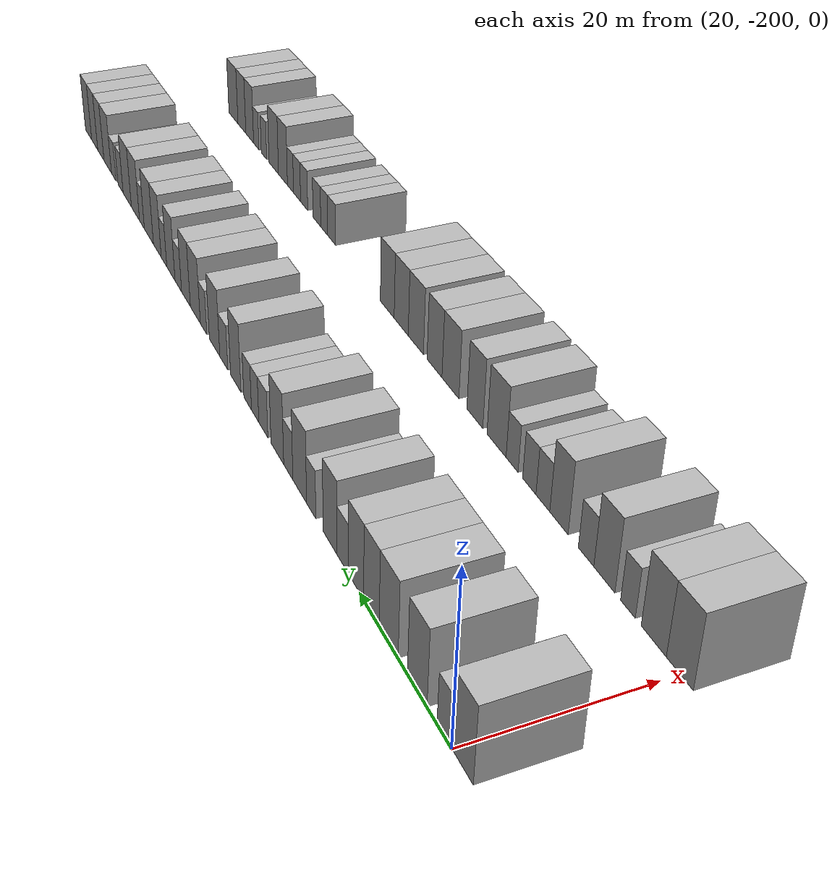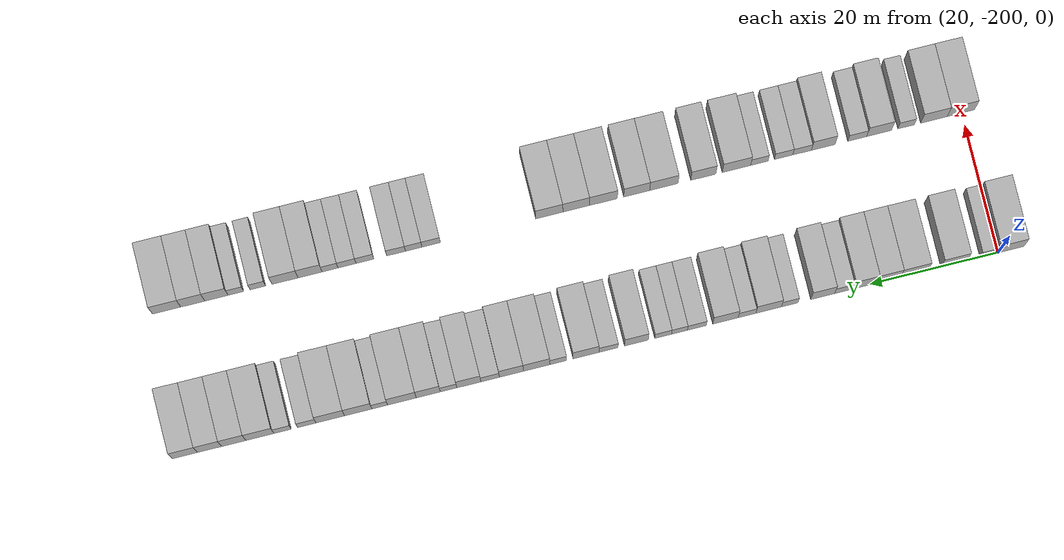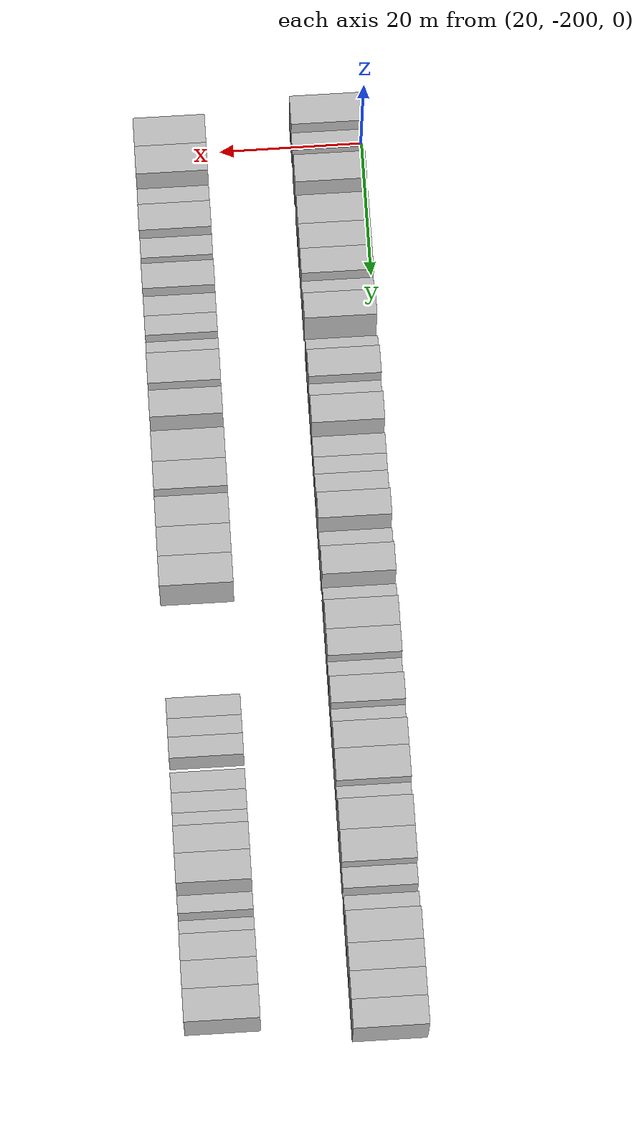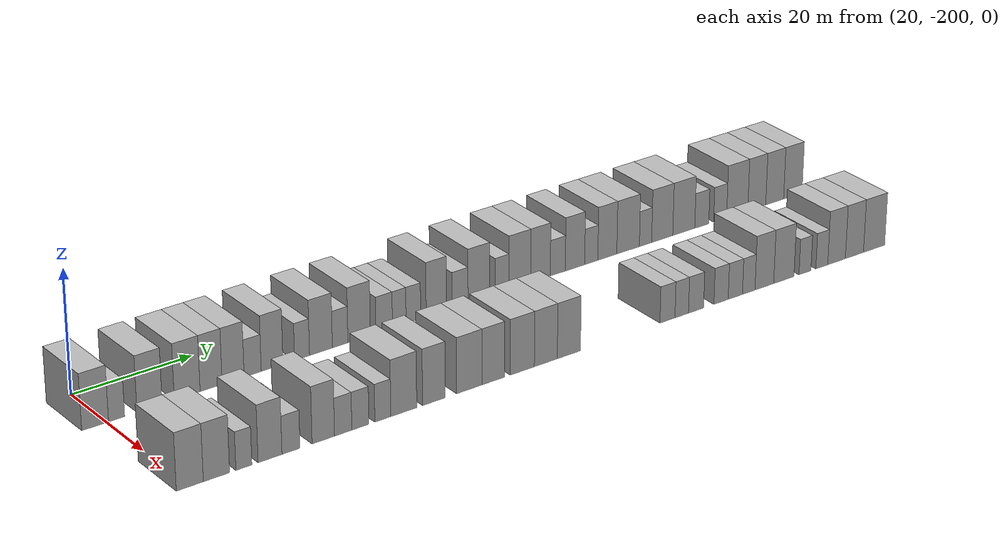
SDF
<sdf version="1.6">
 <world name="default">
  <model name="building_1">
   <static>1</static>
   <pose>25.0000 -201.8537 0 0.000000 0.000000 0.000000</pose>
   <link name="link">
    <pose>0 0 4.50 0 0 0</pose>
    <collision name="collision"><geometry><box><size>10.0000 4.2926 9.0000</size></box></geometry></collision>
    <visual name="visual">
     <cast_shadows>0</cast_shadows>
     <geometry><box><size>10.0000 4.2926 9.0000</size></box></geometry>
     <material>
      <script>
       <uri>model://HANNAS_wall/materials/scripts</uri>
       <uri>model://HANNAS_wall/materials/textures</uri>
       <name>vrc/HANNAS_wall</name>
      </script>
     </material>
    </visual>
   </link>
  </model>
  <model name="building_2">
   <static>1</static>
   <pose>25.0000 -198.4065 0 0.000000 0.000000 0.000000</pose>
   <link name="link">
    <pose>0 0 3.00 0 0 0</pose>
    <collision name="collision"><geometry><box><size>10.0000 2.6019 6.0000</size></box></geometry></collision>
    <visual name="visual">
     <cast_shadows>0</cast_shadows>
     <geometry><box><size>10.0000 2.6019 6.0000</size></box></geometry>
     <material>
      <script>
       <uri>model://HANNAS_wall/materials/scripts</uri>
       <uri>model://HANNAS_wall/materials/textures</uri>
       <name>vrc/HANNAS_wall</name>
      </script>
     </material>
    </visual>
   </link>
  </model>
  <model name="building_3">
   <static>1</static>
   <pose>25.0000 -193.0528 0 0.000000 0.000000 0.000000</pose>
   <link name="link">
    <pose>0 0 4.50 0 0 0</pose>
    <collision name="collision"><geometry><box><size>10.0000 4.1055 9.0000</size></box></geometry></collision>
    <visual name="visual">
     <cast_shadows>0</cast_shadows>
     <geometry><box><size>10.0000 4.1055 9.0000</size></box></geometry>
     <material>
      <script>
       <uri>model://HANNAS_wall/materials/scripts</uri>
       <uri>model://HANNAS_wall/materials/textures</uri>
       <name>vrc/HANNAS_wall</name>
      </script>
     </material>
    </visual>
   </link>
  </model>
  <model name="building_4">
   <static>1</static>
   <pose>25.0000 -186.8608 0 0.000000 0.000000 0.000000</pose>
   <link name="link">
    <pose>0 0 4.50 0 0 0</pose>
    <collision name="collision"><geometry><box><size>10.0000 4.2785 9.0000</size></box></geometry></collision>
    <visual name="visual">
     <cast_shadows>0</cast_shadows>
     <geometry><box><size>10.0000 4.2785 9.0000</size></box></geometry>
     <material>
      <script>
       <uri>model://HANNAS_wall/materials/scripts</uri>
       <uri>model://HANNAS_wall/materials/textures</uri>
       <name>vrc/HANNAS_wall</name>
      </script>
     </material>
    </visual>
   </link>
  </model>
  <model name="building_5">
   <static>1</static>
   <pose>25.0000 -182.8801 0 0.000000 0.000000 0.000000</pose>
   <link name="link">
    <pose>0 0 4.50 0 0 0</pose>
    <collision name="collision"><geometry><box><size>10.0000 3.6829 9.0000</size></box></geometry></collision>
    <visual name="visual">
     <cast_shadows>0</cast_shadows>
     <geometry><box><size>10.0000 3.6829 9.0000</size></box></geometry>
     <material>
      <script>
       <uri>model://HANNAS_wall/materials/scripts</uri>
       <uri>model://HANNAS_wall/materials/textures</uri>
       <name>vrc/HANNAS_wall</name>
      </script>
     </material>
    </visual>
   </link>
  </model>
  <model name="building_6">
   <static>1</static>
   <pose>25.0000 -179.1842 0 0.000000 0.000000 0.000000</pose>
   <link name="link">
    <pose>0 0 4.50 0 0 0</pose>
    <collision name="collision"><geometry><box><size>10.0000 3.7089 9.0000</size></box></geometry></collision>
    <visual name="visual">
     <cast_shadows>0</cast_shadows>
     <geometry><box><size>10.0000 3.7089 9.0000</size></box></geometry>
     <material>
      <script>
       <uri>model://HANNAS_wall/materials/scripts</uri>
       <uri>model://HANNAS_wall/materials/textures</uri>
       <name>vrc/HANNAS_wall</name>
      </script>
     </material>
    </visual>
   </link>
  </model>
  <model name="building_7">
   <static>1</static>
   <pose>25.0000 -175.8771 0 0.000000 0.000000 0.000000</pose>
   <link name="link">
    <pose>0 0 3.00 0 0 0</pose>
    <collision name="collision"><geometry><box><size>10.0000 2.9053 6.0000</size></box></geometry></collision>
    <visual name="visual">
     <cast_shadows>0</cast_shadows>
     <geometry><box><size>10.0000 2.9053 6.0000</size></box></geometry>
     <material>
      <script>
       <uri>model://HANNAS_wall/materials/scripts</uri>
       <uri>model://HANNAS_wall/materials/textures</uri>
       <name>vrc/HANNAS_wall</name>
      </script>
     </material>
    </visual>
   </link>
  </model>
  <model name="building_8">
   <static>1</static>
   <pose>25.0000 -172.5661 0 0.000000 0.000000 0.000000</pose>
   <link name="link">
    <pose>0 0 4.50 0 0 0</pose>
    <collision name="collision"><geometry><box><size>10.0000 3.7166 9.0000</size></box></geometry></collision>
    <visual name="visual">
     <cast_shadows>0</cast_shadows>
     <geometry><box><size>10.0000 3.7166 9.0000</size></box></geometry>
     <material>
      <script>
       <uri>model://HANNAS_wall/materials/scripts</uri>
       <uri>model://HANNAS_wall/materials/textures</uri>
       <name>vrc/HANNAS_wall</name>
      </script>
     </material>
    </visual>
   </link>
  </model>
  <model name="building_9">
   <static>1</static>
   <pose>25.0000 -167.4153 0 0.000000 0.000000 0.000000</pose>
   <link name="link">
    <pose>0 0 3.00 0 0 0</pose>
    <collision name="collision"><geometry><box><size>10.0000 2.5850 6.0000</size></box></geometry></collision>
    <visual name="visual">
     <cast_shadows>0</cast_shadows>
     <geometry><box><size>10.0000 2.5850 6.0000</size></box></geometry>
     <material>
      <script>
       <uri>model://HANNAS_wall/materials/scripts</uri>
       <uri>model://HANNAS_wall/materials/textures</uri>
       <name>vrc/HANNAS_wall</name>
      </script>
     </material>
    </visual>
   </link>
  </model>
  <model name="building_10">
   <static>1</static>
   <pose>25.0000 -164.1304 0 0.000000 0.000000 0.000000</pose>
   <link name="link">
    <pose>0 0 4.50 0 0 0</pose>
    <collision name="collision"><geometry><box><size>10.0000 3.9848 9.0000</size></box></geometry></collision>
    <visual name="visual">
     <cast_shadows>0</cast_shadows>
     <geometry><box><size>10.0000 3.9848 9.0000</size></box></geometry>
     <material>
      <script>
       <uri>model://HANNAS_wall/materials/scripts</uri>
       <uri>model://HANNAS_wall/materials/textures</uri>
       <name>vrc/HANNAS_wall</name>
      </script>
     </material>
    </visual>
   </link>
  </model>
  <model name="building_11">
   <static>1</static>
   <pose>25.0000 -160.7675 0 0.000000 0.000000 0.000000</pose>
   <link name="link">
    <pose>0 0 3.00 0 0 0</pose>
    <collision name="collision"><geometry><box><size>10.0000 2.7411 6.0000</size></box></geometry></collision>
    <visual name="visual">
     <cast_shadows>0</cast_shadows>
     <geometry><box><size>10.0000 2.7411 6.0000</size></box></geometry>
     <material>
      <script>
       <uri>model://HANNAS_wall/materials/scripts</uri>
       <uri>model://HANNAS_wall/materials/textures</uri>
       <name>vrc/HANNAS_wall</name>
      </script>
     </material>
    </visual>
   </link>
  </model>
  <model name="building_12">
   <static>1</static>
   <pose>25.0000 -157.4138 0 0.000000 0.000000 0.000000</pose>
   <link name="link">
    <pose>0 0 4.50 0 0 0</pose>
    <collision name="collision"><geometry><box><size>10.0000 3.9663 9.0000</size></box></geometry></collision>
    <visual name="visual">
     <cast_shadows>0</cast_shadows>
     <geometry><box><size>10.0000 3.9663 9.0000</size></box></geometry>
     <material>
      <script>
       <uri>model://HANNAS_wall/materials/scripts</uri>
       <uri>model://HANNAS_wall/materials/textures</uri>
       <name>vrc/HANNAS_wall</name>
      </script>
     </material>
    </visual>
   </link>
  </model>
  <model name="building_13">
   <static>1</static>
   <pose>25.0000 -152.9617 0 0.000000 0.000000 0.000000</pose>
   <link name="link">
    <pose>0 0 3.00 0 0 0</pose>
    <collision name="collision"><geometry><box><size>10.0000 2.9379 6.0000</size></box></geometry></collision>
    <visual name="visual">
     <cast_shadows>0</cast_shadows>
     <geometry><box><size>10.0000 2.9379 6.0000</size></box></geometry>
     <material>
      <script>
       <uri>model://HANNAS_wall/materials/scripts</uri>
       <uri>model://HANNAS_wall/materials/textures</uri>
       <name>vrc/HANNAS_wall</name>
      </script>
     </material>
    </visual>
   </link>
  </model>
  <model name="building_14">
   <static>1</static>
   <pose>25.0000 -150.2623 0 0.000000 0.000000 0.000000</pose>
   <link name="link">
    <pose>0 0 3.00 0 0 0</pose>
    <collision name="collision"><geometry><box><size>10.0000 2.4608 6.0000</size></box></geometry></collision>
    <visual name="visual">
     <cast_shadows>0</cast_shadows>
     <geometry><box><size>10.0000 2.4608 6.0000</size></box></geometry>
     <material>
      <script>
       <uri>model://HANNAS_wall/materials/scripts</uri>
       <uri>model://HANNAS_wall/materials/textures</uri>
       <name>vrc/HANNAS_wall</name>
      </script>
     </material>
    </visual>
   </link>
  </model>
  <model name="building_15">
   <static>1</static>
   <pose>25.0000 -147.7212 0 0.000000 0.000000 0.000000</pose>
   <link name="link">
    <pose>0 0 3.00 0 0 0</pose>
    <collision name="collision"><geometry><box><size>10.0000 2.6214 6.0000</size></box></geometry></collision>
    <visual name="visual">
     <cast_shadows>0</cast_shadows>
     <geometry><box><size>10.0000 2.6214 6.0000</size></box></geometry>
     <material>
      <script>
       <uri>model://HANNAS_wall/materials/scripts</uri>
       <uri>model://HANNAS_wall/materials/textures</uri>
       <name>vrc/HANNAS_wall</name>
      </script>
     </material>
    </visual>
   </link>
  </model>
  <model name="building_16">
   <static>1</static>
   <pose>25.0000 -143.5604 0 0.000000 0.000000 0.000000</pose>
   <link name="link">
    <pose>0 0 4.50 0 0 0</pose>
    <collision name="collision"><geometry><box><size>10.0000 3.7002 9.0000</size></box></geometry></collision>
    <visual name="visual">
     <cast_shadows>0</cast_shadows>
     <geometry><box><size>10.0000 3.7002 9.0000</size></box></geometry>
     <material>
      <script>
       <uri>model://HANNAS_wall/materials/scripts</uri>
       <uri>model://HANNAS_wall/materials/textures</uri>
       <name>vrc/HANNAS_wall</name>
      </script>
     </material>
    </visual>
   </link>
  </model>
  <model name="building_17">
   <static>1</static>
   <pose>25.0000 -139.2249 0 0.000000 0.000000 0.000000</pose>
   <link name="link">
    <pose>0 0 3.00 0 0 0</pose>
    <collision name="collision"><geometry><box><size>10.0000 2.9709 6.0000</size></box></geometry></collision>
    <visual name="visual">
     <cast_shadows>0</cast_shadows>
     <geometry><box><size>10.0000 2.9709 6.0000</size></box></geometry>
     <material>
      <script>
       <uri>model://HANNAS_wall/materials/scripts</uri>
       <uri>model://HANNAS_wall/materials/textures</uri>
       <name>vrc/HANNAS_wall</name>
      </script>
     </material>
    </visual>
   </link>
  </model>
  <model name="building_18">
   <static>1</static>
   <pose>25.0000 -135.7327 0 0.000000 0.000000 0.000000</pose>
   <link name="link">
    <pose>0 0 4.50 0 0 0</pose>
    <collision name="collision"><geometry><box><size>10.0000 4.0134 9.0000</size></box></geometry></collision>
    <visual name="visual">
     <cast_shadows>0</cast_shadows>
     <geometry><box><size>10.0000 4.0134 9.0000</size></box></geometry>
     <material>
      <script>
       <uri>model://HANNAS_wall/materials/scripts</uri>
       <uri>model://HANNAS_wall/materials/textures</uri>
       <name>vrc/HANNAS_wall</name>
      </script>
     </material>
    </visual>
   </link>
  </model>
  <model name="building_19">
   <static>1</static>
   <pose>25.0000 -131.4297 0 0.000000 0.000000 0.000000</pose>
   <link name="link">
    <pose>0 0 3.00 0 0 0</pose>
    <collision name="collision"><geometry><box><size>10.0000 2.5926 6.0000</size></box></geometry></collision>
    <visual name="visual">
     <cast_shadows>0</cast_shadows>
     <geometry><box><size>10.0000 2.5926 6.0000</size></box></geometry>
     <material>
      <script>
       <uri>model://HANNAS_wall/materials/scripts</uri>
       <uri>model://HANNAS_wall/materials/textures</uri>
       <name>vrc/HANNAS_wall</name>
      </script>
     </material>
    </visual>
   </link>
  </model>
  <model name="building_20">
   <static>1</static>
   <pose>25.0000 -128.0775 0 0.000000 0.000000 0.000000</pose>
   <link name="link">
    <pose>0 0 4.50 0 0 0</pose>
    <collision name="collision"><geometry><box><size>10.0000 4.1117 9.0000</size></box></geometry></collision>
    <visual name="visual">
     <cast_shadows>0</cast_shadows>
     <geometry><box><size>10.0000 4.1117 9.0000</size></box></geometry>
     <material>
      <script>
       <uri>model://HANNAS_wall/materials/scripts</uri>
       <uri>model://HANNAS_wall/materials/textures</uri>
       <name>vrc/HANNAS_wall</name>
      </script>
     </material>
    </visual>
   </link>
  </model>
  <model name="building_21">
   <static>1</static>
   <pose>25.0000 -124.1487 0 0.000000 0.000000 0.000000</pose>
   <link name="link">
    <pose>0 0 4.50 0 0 0</pose>
    <collision name="collision"><geometry><box><size>10.0000 3.7458 9.0000</size></box></geometry></collision>
    <visual name="visual">
     <cast_shadows>0</cast_shadows>
     <geometry><box><size>10.0000 3.7458 9.0000</size></box></geometry>
     <material>
      <script>
       <uri>model://HANNAS_wall/materials/scripts</uri>
       <uri>model://HANNAS_wall/materials/textures</uri>
       <name>vrc/HANNAS_wall</name>
      </script>
     </material>
    </visual>
   </link>
  </model>
  <model name="building_22">
   <static>1</static>
   <pose>25.0000 -120.8417 0 0.000000 0.000000 0.000000</pose>
   <link name="link">
    <pose>0 0 3.00 0 0 0</pose>
    <collision name="collision"><geometry><box><size>10.0000 2.8683 6.0000</size></box></geometry></collision>
    <visual name="visual">
     <cast_shadows>0</cast_shadows>
     <geometry><box><size>10.0000 2.8683 6.0000</size></box></geometry>
     <material>
      <script>
       <uri>model://HANNAS_wall/materials/scripts</uri>
       <uri>model://HANNAS_wall/materials/textures</uri>
       <name>vrc/HANNAS_wall</name>
      </script>
     </material>
    </visual>
   </link>
  </model>
  <model name="building_23">
   <static>1</static>
   <pose>25.0000 -117.5402 0 0.000000 0.000000 0.000000</pose>
   <link name="link">
    <pose>0 0 4.50 0 0 0</pose>
    <collision name="collision"><geometry><box><size>10.0000 3.7347 9.0000</size></box></geometry></collision>
    <visual name="visual">
     <cast_shadows>0</cast_shadows>
     <geometry><box><size>10.0000 3.7347 9.0000</size></box></geometry>
     <material>
      <script>
       <uri>model://HANNAS_wall/materials/scripts</uri>
       <uri>model://HANNAS_wall/materials/textures</uri>
       <name>vrc/HANNAS_wall</name>
      </script>
     </material>
    </visual>
   </link>
  </model>
  <model name="building_24">
   <static>1</static>
   <pose>25.0000 -114.3938 0 0.000000 0.000000 0.000000</pose>
   <link name="link">
    <pose>0 0 3.00 0 0 0</pose>
    <collision name="collision"><geometry><box><size>10.0000 2.5581 6.0000</size></box></geometry></collision>
    <visual name="visual">
     <cast_shadows>0</cast_shadows>
     <geometry><box><size>10.0000 2.5581 6.0000</size></box></geometry>
     <material>
      <script>
       <uri>model://HANNAS_wall/materials/scripts</uri>
       <uri>model://HANNAS_wall/materials/textures</uri>
       <name>vrc/HANNAS_wall</name>
      </script>
     </material>
    </visual>
   </link>
  </model>
  <model name="building_25">
   <static>1</static>
   <pose>25.0000 -111.2595 0 0.000000 0.000000 0.000000</pose>
   <link name="link">
    <pose>0 0 4.50 0 0 0</pose>
    <collision name="collision"><geometry><box><size>10.0000 3.7104 9.0000</size></box></geometry></collision>
    <visual name="visual">
     <cast_shadows>0</cast_shadows>
     <geometry><box><size>10.0000 3.7104 9.0000</size></box></geometry>
     <material>
      <script>
       <uri>model://HANNAS_wall/materials/scripts</uri>
       <uri>model://HANNAS_wall/materials/textures</uri>
       <name>vrc/HANNAS_wall</name>
      </script>
     </material>
    </visual>
   </link>
  </model>
  <model name="building_26">
   <static>1</static>
   <pose>25.0000 -107.1808 0 0.000000 0.000000 0.000000</pose>
   <link name="link">
    <pose>0 0 4.50 0 0 0</pose>
    <collision name="collision"><geometry><box><size>10.0000 4.4472 9.0000</size></box></geometry></collision>
    <visual name="visual">
     <cast_shadows>0</cast_shadows>
     <geometry><box><size>10.0000 4.4472 9.0000</size></box></geometry>
     <material>
      <script>
       <uri>model://HANNAS_wall/materials/scripts</uri>
       <uri>model://HANNAS_wall/materials/textures</uri>
       <name>vrc/HANNAS_wall</name>
      </script>
     </material>
    </visual>
   </link>
  </model>
  <model name="building_27">
   <static>1</static>
   <pose>25.0000 -103.7387 0 0.000000 0.000000 0.000000</pose>
   <link name="link">
    <pose>0 0 3.00 0 0 0</pose>
    <collision name="collision"><geometry><box><size>10.0000 2.4370 6.0000</size></box></geometry></collision>
    <visual name="visual">
     <cast_shadows>0</cast_shadows>
     <geometry><box><size>10.0000 2.4370 6.0000</size></box></geometry>
     <material>
      <script>
       <uri>model://HANNAS_wall/materials/scripts</uri>
       <uri>model://HANNAS_wall/materials/textures</uri>
       <name>vrc/HANNAS_wall</name>
      </script>
     </material>
    </visual>
   </link>
  </model>
  <model name="building_28">
   <static>1</static>
   <pose>25.0000 -100.4080 0 0.000000 0.000000 0.000000</pose>
   <link name="link">
    <pose>0 0 4.50 0 0 0</pose>
    <collision name="collision"><geometry><box><size>10.0000 4.2245 9.0000</size></box></geometry></collision>
    <visual name="visual">
     <cast_shadows>0</cast_shadows>
     <geometry><box><size>10.0000 4.2245 9.0000</size></box></geometry>
     <material>
      <script>
       <uri>model://HANNAS_wall/materials/scripts</uri>
       <uri>model://HANNAS_wall/materials/textures</uri>
       <name>vrc/HANNAS_wall</name>
      </script>
     </material>
    </visual>
   </link>
  </model>
  <model name="building_29">
   <static>1</static>
   <pose>25.0000 -96.0797 0 0.000000 0.000000 0.000000</pose>
   <link name="link">
    <pose>0 0 4.50 0 0 0</pose>
    <collision name="collision"><geometry><box><size>10.0000 4.4322 9.0000</size></box></geometry></collision>
    <visual name="visual">
     <cast_shadows>0</cast_shadows>
     <geometry><box><size>10.0000 4.4322 9.0000</size></box></geometry>
     <material>
      <script>
       <uri>model://HANNAS_wall/materials/scripts</uri>
       <uri>model://HANNAS_wall/materials/textures</uri>
       <name>vrc/HANNAS_wall</name>
      </script>
     </material>
    </visual>
   </link>
  </model>
  <model name="building_30">
   <static>1</static>
   <pose>25.0000 -92.4406 0 0.000000 0.000000 0.000000</pose>
   <link name="link">
    <pose>0 0 3.00 0 0 0</pose>
    <collision name="collision"><geometry><box><size>10.0000 2.8461 6.0000</size></box></geometry></collision>
    <visual name="visual">
     <cast_shadows>0</cast_shadows>
     <geometry><box><size>10.0000 2.8461 6.0000</size></box></geometry>
     <material>
      <script>
       <uri>model://HANNAS_wall/materials/scripts</uri>
       <uri>model://HANNAS_wall/materials/textures</uri>
       <name>vrc/HANNAS_wall</name>
      </script>
     </material>
    </visual>
   </link>
  </model>
  <model name="building_31">
   <static>1</static>
   <pose>25.0000 -88.6851 0 0.000000 0.000000 0.000000</pose>
   <link name="link">
    <pose>0 0 3.00 0 0 0</pose>
    <collision name="collision"><geometry><box><size>10.0000 2.6649 6.0000</size></box></geometry></collision>
    <visual name="visual">
     <cast_shadows>0</cast_shadows>
     <geometry><box><size>10.0000 2.6649 6.0000</size></box></geometry>
     <material>
      <script>
       <uri>model://HANNAS_wall/materials/scripts</uri>
       <uri>model://HANNAS_wall/materials/textures</uri>
       <name>vrc/HANNAS_wall</name>
      </script>
     </material>
    </visual>
   </link>
  </model>
  <model name="building_32">
   <static>1</static>
   <pose>25.0000 -85.1751 0 0.000000 0.000000 0.000000</pose>
   <link name="link">
    <pose>0 0 4.50 0 0 0</pose>
    <collision name="collision"><geometry><box><size>10.0000 4.3550 9.0000</size></box></geometry></collision>
    <visual name="visual">
     <cast_shadows>0</cast_shadows>
     <geometry><box><size>10.0000 4.3550 9.0000</size></box></geometry>
     <material>
      <script>
       <uri>model://HANNAS_wall/materials/scripts</uri>
       <uri>model://HANNAS_wall/materials/textures</uri>
       <name>vrc/HANNAS_wall</name>
      </script>
     </material>
    </visual>
   </link>
  </model>
  <model name="building_33">
   <static>1</static>
   <pose>25.0000 -81.1255 0 0.000000 0.000000 0.000000</pose>
   <link name="link">
    <pose>0 0 4.50 0 0 0</pose>
    <collision name="collision"><geometry><box><size>10.0000 3.7442 9.0000</size></box></geometry></collision>
    <visual name="visual">
     <cast_shadows>0</cast_shadows>
     <geometry><box><size>10.0000 3.7442 9.0000</size></box></geometry>
     <material>
      <script>
       <uri>model://HANNAS_wall/materials/scripts</uri>
       <uri>model://HANNAS_wall/materials/textures</uri>
       <name>vrc/HANNAS_wall</name>
      </script>
     </material>
    </visual>
   </link>
  </model>
  <model name="building_34">
   <static>1</static>
   <pose>25.0000 -77.3756 0 0.000000 0.000000 0.000000</pose>
   <link name="link">
    <pose>0 0 4.50 0 0 0</pose>
    <collision name="collision"><geometry><box><size>10.0000 3.7556 9.0000</size></box></geometry></collision>
    <visual name="visual">
     <cast_shadows>0</cast_shadows>
     <geometry><box><size>10.0000 3.7556 9.0000</size></box></geometry>
     <material>
      <script>
       <uri>model://HANNAS_wall/materials/scripts</uri>
       <uri>model://HANNAS_wall/materials/textures</uri>
       <name>vrc/HANNAS_wall</name>
      </script>
     </material>
    </visual>
   </link>
  </model>
  <model name="building_35">
   <static>1</static>
   <pose>25.0000 -73.5626 0 0.000000 0.000000 0.000000</pose>
   <link name="link">
    <pose>0 0 4.50 0 0 0</pose>
    <collision name="collision"><geometry><box><size>10.0000 3.8703 9.0000</size></box></geometry></collision>
    <visual name="visual">
     <cast_shadows>0</cast_shadows>
     <geometry><box><size>10.0000 3.8703 9.0000</size></box></geometry>
     <material>
      <script>
       <uri>model://HANNAS_wall/materials/scripts</uri>
       <uri>model://HANNAS_wall/materials/textures</uri>
       <name>vrc/HANNAS_wall</name>
      </script>
     </material>
    </visual>
   </link>
  </model>
  <model name="building_100">
   <static>1</static>
   <pose>47.0000 -199.8662 0 0.000000 0.000000 0.000000</pose>
   <link name="link">
    <pose>0 0 4.50 0 0 0</pose>
    <collision name="collision"><geometry><box><size>10.0000 4.2677 9.0000</size></box></geometry></collision>
    <visual name="visual">
     <cast_shadows>0</cast_shadows>
     <geometry><box><size>10.0000 4.2677 9.0000</size></box></geometry>
     <material>
      <script>
       <uri>model://HANNAS_wall/materials/scripts</uri>
       <uri>model://HANNAS_wall/materials/textures</uri>
       <name>vrc/HANNAS_wall</name>
      </script>
     </material>
    </visual>
   </link>
  </model>
  <model name="building_101">
   <static>1</static>
   <pose>47.0000 -195.6428 0 0.000000 0.000000 0.000000</pose>
   <link name="link">
    <pose>0 0 4.50 0 0 0</pose>
    <collision name="collision"><geometry><box><size>10.0000 4.1791 9.0000</size></box></geometry></collision>
    <visual name="visual">
     <cast_shadows>0</cast_shadows>
     <geometry><box><size>10.0000 4.1791 9.0000</size></box></geometry>
     <material>
      <script>
       <uri>model://HANNAS_wall/materials/scripts</uri>
       <uri>model://HANNAS_wall/materials/textures</uri>
       <name>vrc/HANNAS_wall</name>
      </script>
     </material>
    </visual>
   </link>
  </model>
  <model name="building_102">
   <static>1</static>
   <pose>47.0000 -191.2650 0 0.000000 0.000000 0.000000</pose>
   <link name="link">
    <pose>0 0 3.00 0 0 0</pose>
    <collision name="collision"><geometry><box><size>10.0000 2.5765 6.0000</size></box></geometry></collision>
    <visual name="visual">
     <cast_shadows>0</cast_shadows>
     <geometry><box><size>10.0000 2.5765 6.0000</size></box></geometry>
     <material>
      <script>
       <uri>model://HANNAS_wall/materials/scripts</uri>
       <uri>model://HANNAS_wall/materials/textures</uri>
       <name>vrc/HANNAS_wall</name>
      </script>
     </material>
    </visual>
   </link>
  </model>
  <model name="building_103">
   <static>1</static>
   <pose>47.0000 -187.0367 0 0.000000 0.000000 0.000000</pose>
   <link name="link">
    <pose>0 0 4.50 0 0 0</pose>
    <collision name="collision"><geometry><box><size>10.0000 3.8802 9.0000</size></box></geometry></collision>
    <visual name="visual">
     <cast_shadows>0</cast_shadows>
     <geometry><box><size>10.0000 3.8802 9.0000</size></box></geometry>
     <material>
      <script>
       <uri>model://HANNAS_wall/materials/scripts</uri>
       <uri>model://HANNAS_wall/materials/textures</uri>
       <name>vrc/HANNAS_wall</name>
      </script>
     </material>
    </visual>
   </link>
  </model>
  <model name="building_104">
   <static>1</static>
   <pose>47.0000 -183.6220 0 0.000000 0.000000 0.000000</pose>
   <link name="link">
    <pose>0 0 3.00 0 0 0</pose>
    <collision name="collision"><geometry><box><size>10.0000 2.9492 6.0000</size></box></geometry></collision>
    <visual name="visual">
     <cast_shadows>0</cast_shadows>
     <geometry><box><size>10.0000 2.9492 6.0000</size></box></geometry>
     <material>
      <script>
       <uri>model://HANNAS_wall/materials/scripts</uri>
       <uri>model://HANNAS_wall/materials/textures</uri>
       <name>vrc/HANNAS_wall</name>
      </script>
     </material>
    </visual>
   </link>
  </model>
  <model name="building_105">
   <static>1</static>
   <pose>47.0000 -178.2881 0 0.000000 0.000000 0.000000</pose>
   <link name="link">
    <pose>0 0 4.50 0 0 0</pose>
    <collision name="collision"><geometry><box><size>10.0000 3.7186 9.0000</size></box></geometry></collision>
    <visual name="visual">
     <cast_shadows>0</cast_shadows>
     <geometry><box><size>10.0000 3.7186 9.0000</size></box></geometry>
     <material>
      <script>
       <uri>model://HANNAS_wall/materials/scripts</uri>
       <uri>model://HANNAS_wall/materials/textures</uri>
       <name>vrc/HANNAS_wall</name>
      </script>
     </material>
    </visual>
   </link>
  </model>
  <model name="building_106">
   <static>1</static>
   <pose>47.0000 -174.9837 0 0.000000 0.000000 0.000000</pose>
   <link name="link">
    <pose>0 0 3.00 0 0 0</pose>
    <collision name="collision"><geometry><box><size>10.0000 2.8901 6.0000</size></box></geometry></collision>
    <visual name="visual">
     <cast_shadows>0</cast_shadows>
     <geometry><box><size>10.0000 2.8901 6.0000</size></box></geometry>
     <material>
      <script>
       <uri>model://HANNAS_wall/materials/scripts</uri>
       <uri>model://HANNAS_wall/materials/textures</uri>
       <name>vrc/HANNAS_wall</name>
      </script>
     </material>
    </visual>
   </link>
  </model>
  <model name="building_107">
   <static>1</static>
   <pose>47.0000 -172.1006 0 0.000000 0.000000 0.000000</pose>
   <link name="link">
    <pose>0 0 3.00 0 0 0</pose>
    <collision name="collision"><geometry><box><size>10.0000 2.8761 6.0000</size></box></geometry></collision>
    <visual name="visual">
     <cast_shadows>0</cast_shadows>
     <geometry><box><size>10.0000 2.8761 6.0000</size></box></geometry>
     <material>
      <script>
       <uri>model://HANNAS_wall/materials/scripts</uri>
       <uri>model://HANNAS_wall/materials/textures</uri>
       <name>vrc/HANNAS_wall</name>
      </script>
     </material>
    </visual>
   </link>
  </model>
  <model name="building_108">
   <static>1</static>
   <pose>47.0000 -168.3079 0 0.000000 0.000000 0.000000</pose>
   <link name="link">
    <pose>0 0 3.00 0 0 0</pose>
    <collision name="collision"><geometry><box><size>10.0000 2.7094 6.0000</size></box></geometry></collision>
    <visual name="visual">
     <cast_shadows>0</cast_shadows>
     <geometry><box><size>10.0000 2.7094 6.0000</size></box></geometry>
     <material>
      <script>
       <uri>model://HANNAS_wall/materials/scripts</uri>
       <uri>model://HANNAS_wall/materials/textures</uri>
       <name>vrc/HANNAS_wall</name>
      </script>
     </material>
    </visual>
   </link>
  </model>
  <model name="building_109">
   <static>1</static>
   <pose>47.0000 -164.7314 0 0.000000 0.000000 0.000000</pose>
   <link name="link">
    <pose>0 0 4.50 0 0 0</pose>
    <collision name="collision"><geometry><box><size>10.0000 4.4436 9.0000</size></box></geometry></collision>
    <visual name="visual">
     <cast_shadows>0</cast_shadows>
     <geometry><box><size>10.0000 4.4436 9.0000</size></box></geometry>
     <material>
      <script>
       <uri>model://HANNAS_wall/materials/scripts</uri>
       <uri>model://HANNAS_wall/materials/textures</uri>
       <name>vrc/HANNAS_wall</name>
      </script>
     </material>
    </visual>
   </link>
  </model>
  <model name="building_110">
   <static>1</static>
   <pose>47.0000 -159.5524 0 0.000000 0.000000 0.000000</pose>
   <link name="link">
    <pose>0 0 4.50 0 0 0</pose>
    <collision name="collision"><geometry><box><size>10.0000 3.9143 9.0000</size></box></geometry></collision>
    <visual name="visual">
     <cast_shadows>0</cast_shadows>
     <geometry><box><size>10.0000 3.9143 9.0000</size></box></geometry>
     <material>
      <script>
       <uri>model://HANNAS_wall/materials/scripts</uri>
       <uri>model://HANNAS_wall/materials/textures</uri>
       <name>vrc/HANNAS_wall</name>
      </script>
     </material>
    </visual>
   </link>
  </model>
  <model name="building_111">
   <static>1</static>
   <pose>47.0000 -153.3856 0 0.000000 0.000000 0.000000</pose>
   <link name="link">
    <pose>0 0 4.50 0 0 0</pose>
    <collision name="collision"><geometry><box><size>10.0000 4.4193 9.0000</size></box></geometry></collision>
    <visual name="visual">
     <cast_shadows>0</cast_shadows>
     <geometry><box><size>10.0000 4.4193 9.0000</size></box></geometry>
     <material>
      <script>
       <uri>model://HANNAS_wall/materials/scripts</uri>
       <uri>model://HANNAS_wall/materials/textures</uri>
       <name>vrc/HANNAS_wall</name>
      </script>
     </material>
    </visual>
   </link>
  </model>
  <model name="building_112">
   <static>1</static>
   <pose>47.0000 -149.1533 0 0.000000 0.000000 0.000000</pose>
   <link name="link">
    <pose>0 0 4.50 0 0 0</pose>
    <collision name="collision"><geometry><box><size>10.0000 4.0453 9.0000</size></box></geometry></collision>
    <visual name="visual">
     <cast_shadows>0</cast_shadows>
     <geometry><box><size>10.0000 4.0453 9.0000</size></box></geometry>
     <material>
      <script>
       <uri>model://HANNAS_wall/materials/scripts</uri>
       <uri>model://HANNAS_wall/materials/textures</uri>
       <name>vrc/HANNAS_wall</name>
      </script>
     </material>
    </visual>
   </link>
  </model>
  <model name="building_113">
   <static>1</static>
   <pose>47.0000 -143.9666 0 0.000000 0.000000 0.000000</pose>
   <link name="link">
    <pose>0 0 4.50 0 0 0</pose>
    <collision name="collision"><geometry><box><size>10.0000 4.3280 9.0000</size></box></geometry></collision>
    <visual name="visual">
     <cast_shadows>0</cast_shadows>
     <geometry><box><size>10.0000 4.3280 9.0000</size></box></geometry>
     <material>
      <script>
       <uri>model://HANNAS_wall/materials/scripts</uri>
       <uri>model://HANNAS_wall/materials/textures</uri>
       <name>vrc/HANNAS_wall</name>
      </script>
     </material>
    </visual>
   </link>
  </model>
  <model name="building_114">
   <static>1</static>
   <pose>47.0000 -139.7237 0 0.000000 0.000000 0.000000</pose>
   <link name="link">
    <pose>0 0 4.50 0 0 0</pose>
    <collision name="collision"><geometry><box><size>10.0000 4.1579 9.0000</size></box></geometry></collision>
    <visual name="visual">
     <cast_shadows>0</cast_shadows>
     <geometry><box><size>10.0000 4.1579 9.0000</size></box></geometry>
     <material>
      <script>
       <uri>model://HANNAS_wall/materials/scripts</uri>
       <uri>model://HANNAS_wall/materials/textures</uri>
       <name>vrc/HANNAS_wall</name>
      </script>
     </material>
    </visual>
   </link>
  </model>
  <model name="building_115">
   <static>1</static>
   <pose>47.0000 -135.5289 0 0.000000 0.000000 0.000000</pose>
   <link name="link">
    <pose>0 0 4.50 0 0 0</pose>
    <collision name="collision"><geometry><box><size>10.0000 4.2317 9.0000</size></box></geometry></collision>
    <visual name="visual">
     <cast_shadows>0</cast_shadows>
     <geometry><box><size>10.0000 4.2317 9.0000</size></box></geometry>
     <material>
      <script>
       <uri>model://HANNAS_wall/materials/scripts</uri>
       <uri>model://HANNAS_wall/materials/textures</uri>
       <name>vrc/HANNAS_wall</name>
      </script>
     </material>
    </visual>
   </link>
  </model>
  <model name="building_116">
   <static>1</static>
   <pose>47.0000 -117.1264 0 0.000000 0.000000 0.000000</pose>
   <link name="link">
    <pose>0 0 3.00 0 0 0</pose>
    <collision name="collision"><geometry><box><size>10.0000 2.8578 6.0000</size></box></geometry></collision>
    <visual name="visual">
     <cast_shadows>0</cast_shadows>
     <geometry><box><size>10.0000 2.8578 6.0000</size></box></geometry>
     <material>
      <script>
       <uri>model://HANNAS_wall/materials/scripts</uri>
       <uri>model://HANNAS_wall/materials/textures</uri>
       <name>vrc/HANNAS_wall</name>
      </script>
     </material>
    </visual>
   </link>
  </model>
  <model name="building_117">
   <static>1</static>
   <pose>47.0000 -114.4094 0 0.000000 0.000000 0.000000</pose>
   <link name="link">
    <pose>0 0 3.00 0 0 0</pose>
    <collision name="collision"><geometry><box><size>10.0000 2.5762 6.0000</size></box></geometry></collision>
    <visual name="visual">
     <cast_shadows>0</cast_shadows>
     <geometry><box><size>10.0000 2.5762 6.0000</size></box></geometry>
     <material>
      <script>
       <uri>model://HANNAS_wall/materials/scripts</uri>
       <uri>model://HANNAS_wall/materials/textures</uri>
       <name>vrc/HANNAS_wall</name>
      </script>
     </material>
    </visual>
   </link>
  </model>
  <model name="building_118">
   <static>1</static>
   <pose>47.0000 -111.6615 0 0.000000 0.000000 0.000000</pose>
   <link name="link">
    <pose>0 0 3.00 0 0 0</pose>
    <collision name="collision"><geometry><box><size>10.0000 2.9197 6.0000</size></box></geometry></collision>
    <visual name="visual">
     <cast_shadows>0</cast_shadows>
     <geometry><box><size>10.0000 2.9197 6.0000</size></box></geometry>
     <material>
      <script>
       <uri>model://HANNAS_wall/materials/scripts</uri>
       <uri>model://HANNAS_wall/materials/textures</uri>
       <name>vrc/HANNAS_wall</name>
      </script>
     </material>
    </visual>
   </link>
  </model>
  <model name="building_119">
   <static>1</static>
   <pose>47.0000 -106.8124 0 0.000000 0.000000 0.000000</pose>
   <link name="link">
    <pose>0 0 3.00 0 0 0</pose>
    <collision name="collision"><geometry><box><size>10.0000 2.7784 6.0000</size></box></geometry></collision>
    <visual name="visual">
     <cast_shadows>0</cast_shadows>
     <geometry><box><size>10.0000 2.7784 6.0000</size></box></geometry>
     <material>
      <script>
       <uri>model://HANNAS_wall/materials/scripts</uri>
       <uri>model://HANNAS_wall/materials/textures</uri>
       <name>vrc/HANNAS_wall</name>
      </script>
     </material>
    </visual>
   </link>
  </model>
  <model name="building_120">
   <static>1</static>
   <pose>47.0000 -104.0270 0 0.000000 0.000000 0.000000</pose>
   <link name="link">
    <pose>0 0 3.00 0 0 0</pose>
    <collision name="collision"><geometry><box><size>10.0000 2.7924 6.0000</size></box></geometry></collision>
    <visual name="visual">
     <cast_shadows>0</cast_shadows>
     <geometry><box><size>10.0000 2.7924 6.0000</size></box></geometry>
     <material>
      <script>
       <uri>model://HANNAS_wall/materials/scripts</uri>
       <uri>model://HANNAS_wall/materials/textures</uri>
       <name>vrc/HANNAS_wall</name>
      </script>
     </material>
    </visual>
   </link>
  </model>
  <model name="building_121">
   <static>1</static>
   <pose>47.0000 -101.3953 0 0.000000 0.000000 0.000000</pose>
   <link name="link">
    <pose>0 0 3.00 0 0 0</pose>
    <collision name="collision"><geometry><box><size>10.0000 2.4710 6.0000</size></box></geometry></collision>
    <visual name="visual">
     <cast_shadows>0</cast_shadows>
     <geometry><box><size>10.0000 2.4710 6.0000</size></box></geometry>
     <material>
      <script>
       <uri>model://HANNAS_wall/materials/scripts</uri>
       <uri>model://HANNAS_wall/materials/textures</uri>
       <name>vrc/HANNAS_wall</name>
      </script>
     </material>
    </visual>
   </link>
  </model>
  <model name="building_122">
   <static>1</static>
   <pose>47.0000 -98.3011 0 0.000000 0.000000 0.000000</pose>
   <link name="link">
    <pose>0 0 4.50 0 0 0</pose>
    <collision name="collision"><geometry><box><size>10.0000 3.7176 9.0000</size></box></geometry></collision>
    <visual name="visual">
     <cast_shadows>0</cast_shadows>
     <geometry><box><size>10.0000 3.7176 9.0000</size></box></geometry>
     <material>
      <script>
       <uri>model://HANNAS_wall/materials/scripts</uri>
       <uri>model://HANNAS_wall/materials/textures</uri>
       <name>vrc/HANNAS_wall</name>
      </script>
     </material>
    </visual>
   </link>
  </model>
  <model name="building_123">
   <static>1</static>
   <pose>47.0000 -94.4114 0 0.000000 0.000000 0.000000</pose>
   <link name="link">
    <pose>0 0 4.50 0 0 0</pose>
    <collision name="collision"><geometry><box><size>10.0000 4.0618 9.0000</size></box></geometry></collision>
    <visual name="visual">
     <cast_shadows>0</cast_shadows>
     <geometry><box><size>10.0000 4.0618 9.0000</size></box></geometry>
     <material>
      <script>
       <uri>model://HANNAS_wall/materials/scripts</uri>
       <uri>model://HANNAS_wall/materials/textures</uri>
       <name>vrc/HANNAS_wall</name>
      </script>
     </material>
    </visual>
   </link>
  </model>
  <model name="building_124">
   <static>1</static>
   <pose>47.0000 -90.1785 0 0.000000 0.000000 0.000000</pose>
   <link name="link">
    <pose>0 0 3.00 0 0 0</pose>
    <collision name="collision"><geometry><box><size>10.0000 2.4039 6.0000</size></box></geometry></collision>
    <visual name="visual">
     <cast_shadows>0</cast_shadows>
     <geometry><box><size>10.0000 2.4039 6.0000</size></box></geometry>
     <material>
      <script>
       <uri>model://HANNAS_wall/materials/scripts</uri>
       <uri>model://HANNAS_wall/materials/textures</uri>
       <name>vrc/HANNAS_wall</name>
      </script>
     </material>
    </visual>
   </link>
  </model>
  <model name="building_125">
   <static>1</static>
   <pose>47.0000 -86.7685 0 0.000000 0.000000 0.000000</pose>
   <link name="link">
    <pose>0 0 3.00 0 0 0</pose>
    <collision name="collision"><geometry><box><size>10.0000 2.4161 6.0000</size></box></geometry></collision>
    <visual name="visual">
     <cast_shadows>0</cast_shadows>
     <geometry><box><size>10.0000 2.4161 6.0000</size></box></geometry>
     <material>
      <script>
       <uri>model://HANNAS_wall/materials/scripts</uri>
       <uri>model://HANNAS_wall/materials/textures</uri>
       <name>vrc/HANNAS_wall</name>
      </script>
     </material>
    </visual>
   </link>
  </model>
  <model name="building_126">
   <static>1</static>
   <pose>47.0000 -83.7591 0 0.000000 0.000000 0.000000</pose>
   <link name="link">
    <pose>0 0 4.50 0 0 0</pose>
    <collision name="collision"><geometry><box><size>10.0000 3.6026 9.0000</size></box></geometry></collision>
    <visual name="visual">
     <cast_shadows>0</cast_shadows>
     <geometry><box><size>10.0000 3.6026 9.0000</size></box></geometry>
     <material>
      <script>
       <uri>model://HANNAS_wall/materials/scripts</uri>
       <uri>model://HANNAS_wall/materials/textures</uri>
       <name>vrc/HANNAS_wall</name>
      </script>
     </material>
    </visual>
   </link>
  </model>
  <model name="building_127">
   <static>1</static>
   <pose>47.0000 -80.0917 0 0.000000 0.000000 0.000000</pose>
   <link name="link">
    <pose>0 0 4.50 0 0 0</pose>
    <collision name="collision"><geometry><box><size>10.0000 3.7323 9.0000</size></box></geometry></collision>
    <visual name="visual">
     <cast_shadows>0</cast_shadows>
     <geometry><box><size>10.0000 3.7323 9.0000</size></box></geometry>
     <material>
      <script>
       <uri>model://HANNAS_wall/materials/scripts</uri>
       <uri>model://HANNAS_wall/materials/textures</uri>
       <name>vrc/HANNAS_wall</name>
      </script>
     </material>
    </visual>
   </link>
  </model>
  <model name="building_128">
   <static>1</static>
   <pose>47.0000 -76.0294 0 0.000000 0.000000 0.000000</pose>
   <link name="link">
    <pose>0 0 4.50 0 0 0</pose>
    <collision name="collision"><geometry><box><size>10.0000 4.3921 9.0000</size></box></geometry></collision>
    <visual name="visual">
     <cast_shadows>0</cast_shadows>
     <geometry><box><size>10.0000 4.3921 9.0000</size></box></geometry>
     <material>
      <script>
       <uri>model://HANNAS_wall/materials/scripts</uri>
       <uri>model://HANNAS_wall/materials/textures</uri>
       <name>vrc/HANNAS_wall</name>
      </script>
     </material>
    </visual>
   </link>
  </model>
 </world>
</sdf>
